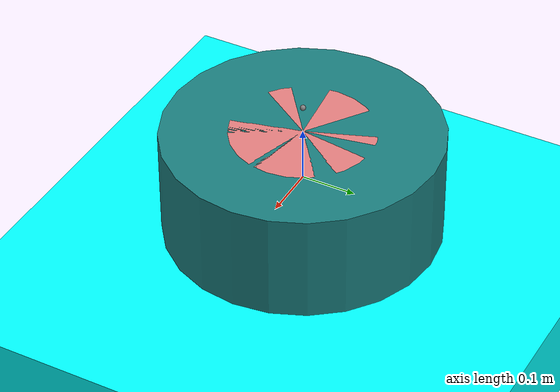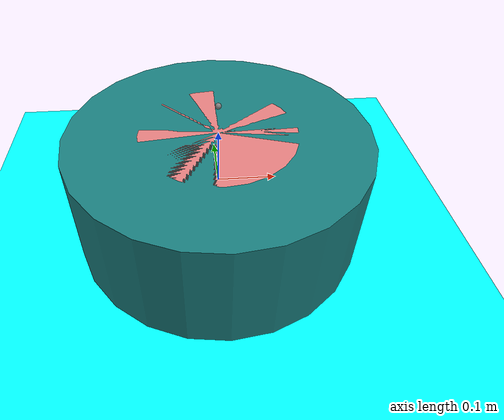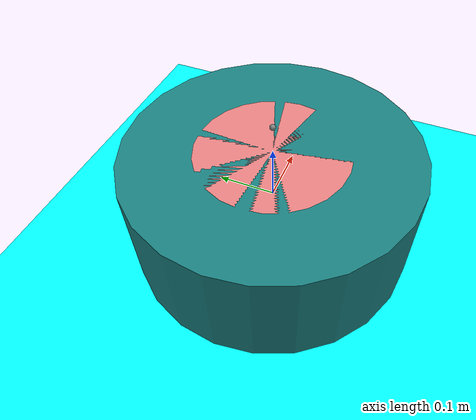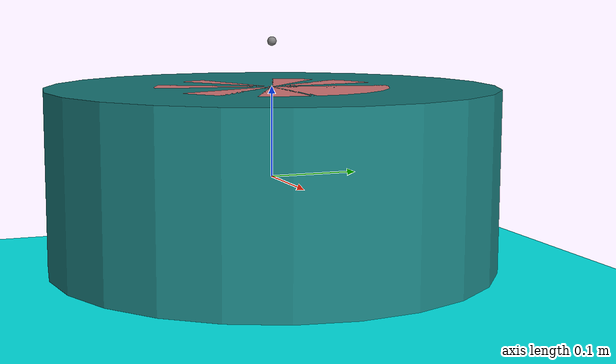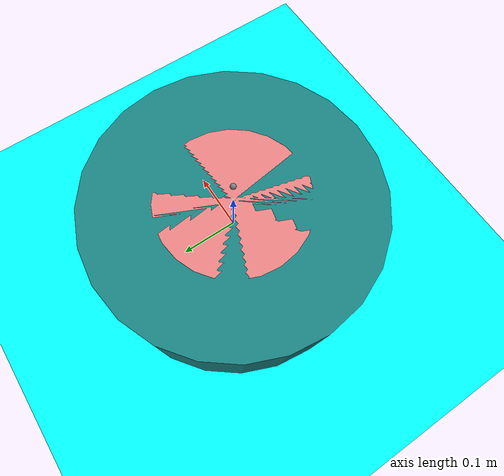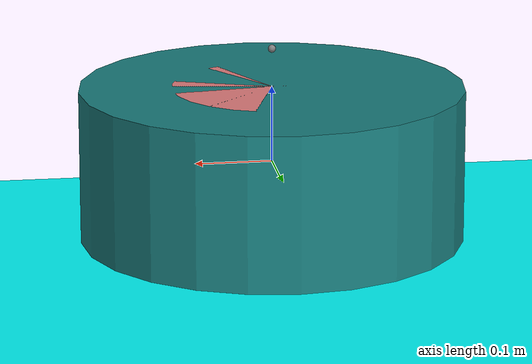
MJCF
<mujoco model="diff_drive_push">
  <option timestep="0.02" />

  <asset>
    <texture name="blue_grid" type="2d" builtin="checker" rgb1=".02 .14 .44" rgb2=".27 .55 1" width="300" height="300" mark="edge" markrgb="1 1 1"/>
    <material name="blue_grid" texture="blue_grid" texrepeat="1 1" texuniform="true" reflectance=".2"/>
  </asset>

  <worldbody>
    <body>
      <geom mass="0" name="floor" pos="0 0 -0.25" condim="3" size="10.0 10.0 0.10" rgba="0 1 1 1" type="box" material="blue_grid"/>
    </body>

    <body name="pusher" pos="0 0 0">
      <joint name="pusher_x" damping="8" type="slide" axis="1 0 0" />
      <joint name="pusher_y" damping="8" type="slide" axis="0 1 0" />
      <joint name="pusher_theta" damping="2" type="hinge" axis="0 0 1" />
      <!-- friction must be > 0; zero friction causes NaN in mujoco_warp contact solver -->
      <geom name="pusher" type="cylinder" size="0.13 0.1" mass="1" rgba=".9 .5 .5 1" friction="0.01"/>
      <!-- heading marker so the facing direction is visible -->
      <geom name="pusher_nose" type="box" pos="0.13 0 0" size="0.09 0.04 0.06" rgba=".95 .85 .2 1" mass="0" contype="0" conaffinity="0"/>
      <site pos="0 0 0.15" name="pusher_site"/>
    </body>

    <body name="cart" pos="0 0 0">
      <joint name="slider_cart_x" damping="4" type="slide" axis="1 0 0" />
      <joint name="slider_cart_y" damping="4" type="slide" axis="0 1 0" />
      <!-- friction must be > 0; zero friction causes NaN in mujoco_warp contact solver -->
      <geom name="cart" type="cylinder" size="0.25 0.1" mass="1" rgba=".1 .5 .5 1" friction="0.01"/>
      <site pos="0 0 0.15" name="cart_site"/>
    </body>
  </worldbody>

  <actuator>
    <!-- Forward drive: velocity servo applied along the pusher heading (site local x-axis).
         This lets the pusher move along its heading without drifting sideways. -->
    <velocity name="actuator_forward" site="pusher_site" gear="1 0 0 0 0 0" kv="20" ctrlrange="-2 2" forcerange="-1000 1000"/>
    <!-- Heading: position control on the pusher's turning joint. -->
    <position name="actuator_heading" joint="pusher_theta" kp="10" ctrlrange="-10 10" forcerange="-1000 1000"/>
  </actuator>

  <sensor>
    <framepos name="trace_pusher" objtype="site" objname="pusher_site"/>
    <framexaxis name="pusher_heading" objtype="site" objname="pusher_site"/>
    <framelinvel name="pusher_linvel" objtype="site" objname="pusher_site"/>
    <frameangvel name="pusher_angvel" objtype="site" objname="pusher_site"/>
    <framepos name="trace_cart" objtype="site" objname="cart_site"/>
  </sensor>

</mujoco>
